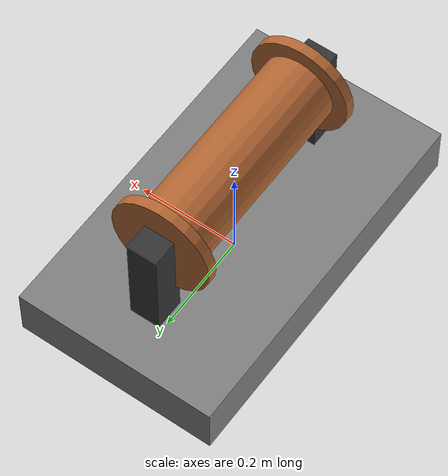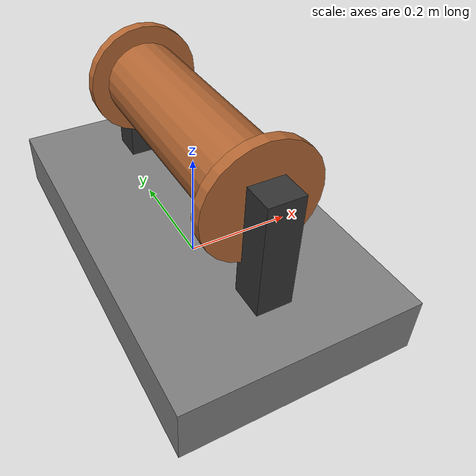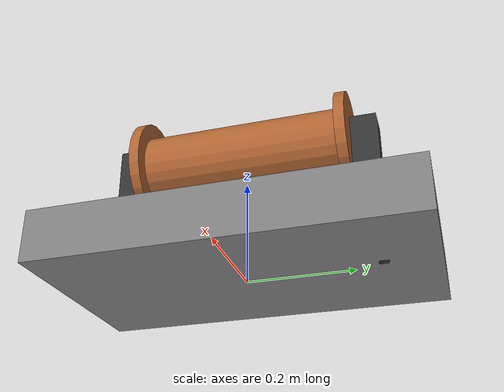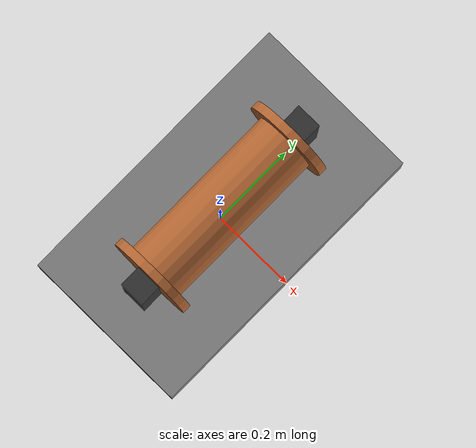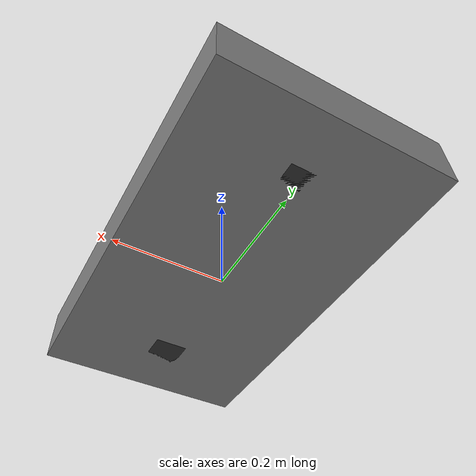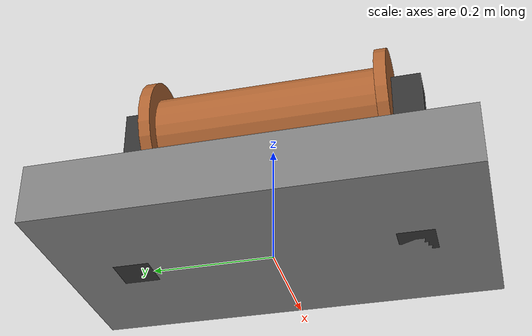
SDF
<?xml version="1.0" ?>
<sdf version="1.8">
  <model name="carretel_ancora">
    <self_collide>true</self_collide>

    <link name="base_suporte">
      <pose>0 0 0 0 0 0</pose>
      <inertial>
        <mass>12.0</mass>
        <!-- Inércia ajustada para uma caixa de 0.4 x 0.7 x 0.10 -->
        <inertia><ixx>0.50</ixx><iyy>0.17</iyy><izz>0.65</izz></inertia>
      </inertial>

      <!-- Placa do Chão (Altura ajustada para 1/3 da haste: 0.10m) -->
      <visual name="base_visual">
        <pose>0 0 0.05 0 0 0</pose>
        <geometry><box><size>0.4 0.7 0.10</size></box></geometry>
        <!-- Adicionada uma cor cinza mais clara e metálica -->
        <material>
          <ambient>0.4 0.4 0.4 1</ambient>
          <diffuse>0.5 0.5 0.5 1</diffuse>
        </material>
      </visual>
      <collision name="base_colisao">
        <pose>0 0 0.05 0 0 0</pose>
        <geometry><box><size>0.4 0.7 0.10</size></box></geometry>
      </collision>

      <!-- Haste Esquerda -->
      <visual name="haste_esq_visual">
        <pose>0 0.23 0.15 0 0 0</pose>
        <geometry><box><size>0.06 0.06 0.30</size></box></geometry>
        <material>
          <ambient>0.1 0.1 0.1 1</ambient>
          <diffuse>0.2 0.2 0.2 1</diffuse>
        </material>
      </visual>
      <collision name="haste_esq_colisao">
        <pose>0 0.23 0.15 0 0 0</pose>
        <geometry><box><size>0.06 0.06 0.30</size></box></geometry>
      </collision>

      <!-- Haste Direita -->
      <visual name="haste_dir_visual">
        <pose>0 -0.23 0.15 0 0 0</pose>
        <geometry><box><size>0.06 0.06 0.30</size></box></geometry>
        <material>
          <ambient>0.1 0.1 0.1 1</ambient>
          <diffuse>0.2 0.2 0.2 1</diffuse>
        </material>
      </visual>
      <collision name="haste_dir_colisao">
        <pose>0 -0.23 0.15 0 0 0</pose>
        <geometry><box><size>0.06 0.06 0.30</size></box></geometry>
      </collision>
    </link>

    <link name="cilindro_carretel">
      <pose>0 0 0.26 1.570796 0 0</pose>
      <inertial>
        <mass>3.0</mass>
        <inertia><ixx>0.02</ixx><iyy>0.02</iyy><izz>0.02</izz></inertia>
      </inertial>

      <!-- Corpo principal do carretel -->
      <visual name="cilindro_visual">
        <geometry><cylinder><radius>0.07</radius><length>0.40</length></cylinder></geometry>
        <material>
          <ambient>0.6 0.3 0.1 1</ambient>
          <diffuse>0.7 0.4 0.2 1</diffuse>
        </material>
      </visual>
      <collision name="cilindro_colisao">
        <geometry><cylinder><radius>0.07</radius><length>0.40</length></cylinder></geometry>
      </collision>

      <!-- Flange/Borda Direita do Carretel -->
      <visual name="borda_dir_visual">
        <pose>0 0 0.20 0 0 0</pose>
        <geometry><cylinder><radius>0.10</radius><length>0.02</length></cylinder></geometry>
        <material>
          <ambient>0.6 0.3 0.1 1</ambient>
          <diffuse>0.7 0.4 0.2 1</diffuse>
        </material>
      </visual>
      <collision name="borda_dir_colisao">
        <pose>0 0 0.20 0 0 0</pose>
        <geometry><cylinder><radius>0.10</radius><length>0.02</length></cylinder></geometry>
      </collision>

      <!-- Flange/Borda Esquerda do Carretel -->
      <visual name="borda_esq_visual">
        <pose>0 0 -0.20 0 0 0</pose>
        <geometry><cylinder><radius>0.10</radius><length>0.02</length></cylinder></geometry>
        <material>
          <ambient>0.6 0.3 0.1 1</ambient>
          <diffuse>0.7 0.4 0.2 1</diffuse>
        </material>
      </visual>
      <collision name="borda_esq_colisao">
        <pose>0 0 -0.20 0 0 0</pose>
        <geometry><cylinder><radius>0.10</radius><length>0.02</length></cylinder></geometry>
      </collision>
    </link>

    <joint name="junta_eixo" type="revolute">
      <parent>base_suporte</parent>
      <child>cilindro_carretel</child>
      <axis>
        <xyz>0 0 1</xyz>
        <limit>
          <lower>-1e16</lower>
          <upper>1e16</upper>
        </limit>
        <dynamics>
          <damping>0.05</damping>
          <friction>0.05</friction>
        </dynamics>
      </axis>
    </joint>

    <joint name="ancora_mundo" type="fixed">
      <parent>world</parent>
      <child>base_suporte</child>
    </joint>

    <plugin
      filename="gz-sim-joint-controller-system"
      name="gz::sim::systems::JointController">
      <joint_name>junta_eixo</joint_name>
      <topic>/carretel/velocidade</topic>
    </plugin>
  </model>
</sdf>
